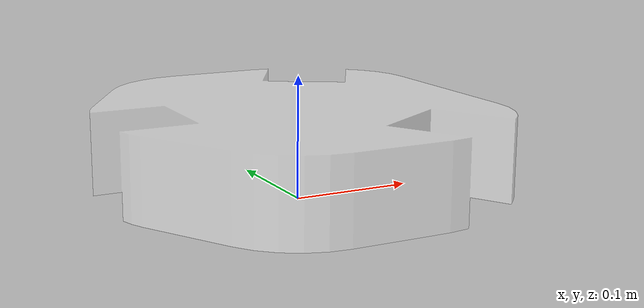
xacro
<?xml version="1.0"?>
<robot xmlns:xacro="http://ros.org/wiki/xacro" name="robotont">
    <xacro:arg name="prefix" default=""/>
    <xacro:property name= "prefix" value="$(arg prefix)"/>
    <xacro:include filename="$(find robotont_description)/urdf/rim.urdf.xacro"/>
    <xacro:property name="wheel_distance" value="0.146"/>
    <xacro:property name="wheel_center_height" value="0.021"/>

    <link name="${prefix}base_footprint"/>

    <link name="${prefix}base_link">
        <visual>
            <geometry>
                <mesh scale="0.001 0.001 0.001" filename="package://robotont_description/meshes/body.stl"/>
            </geometry>
            <material name="base_material">
                <color rgba="1 1 1 0.5"/>
            </material>
            <origin rpy="0 0 ${pi/2}"  xyz="0 0 0"/>
        </visual>
        <collision>
            <geometry>
                <mesh scale="0.001 0.001 0.001" filename="package://robotont_description/meshes/simplebody.stl"/>
            </geometry>
            <origin rpy="${pi/2} 0 ${pi/2}"  xyz="0 0 0"/>
        </collision>
        <inertial>
            <mass value="3"/>
            <inertia
			    ixx="0.02462503"
			    ixy="0"
			    ixz="0"
			    iyy="0.02082228"
			    iyz="0"
			    izz="0.04324237"
		    />
        </inertial>
    </link>

    <joint name="${prefix}base_joint" type="fixed">
        <parent link="${prefix}base_footprint"/>
        <child link="${prefix}base_link"/>
        <origin xyz="0 0 0.013" rpy="0 0 0"/>
    </joint>

    <!-- Wheels -->
 </robot>
